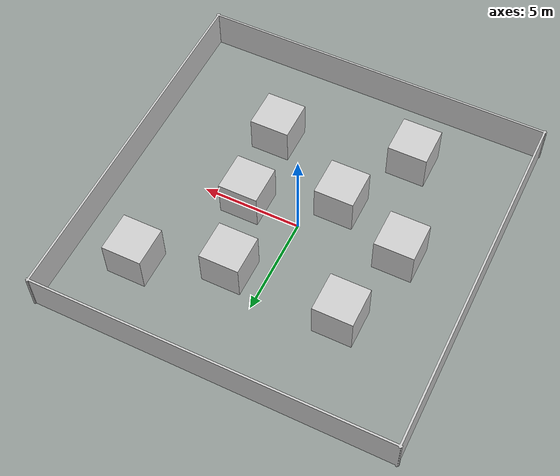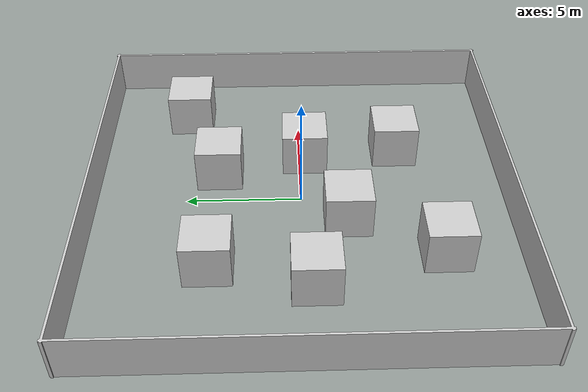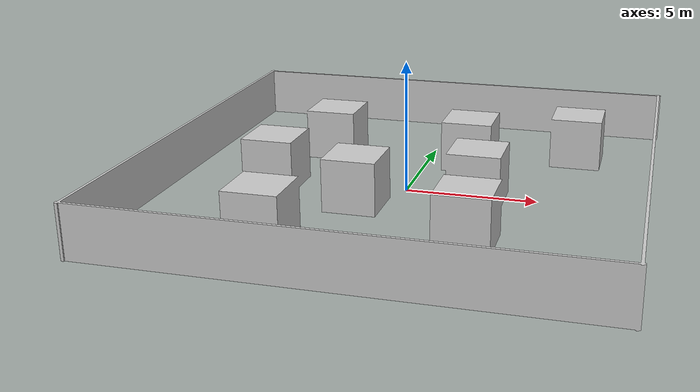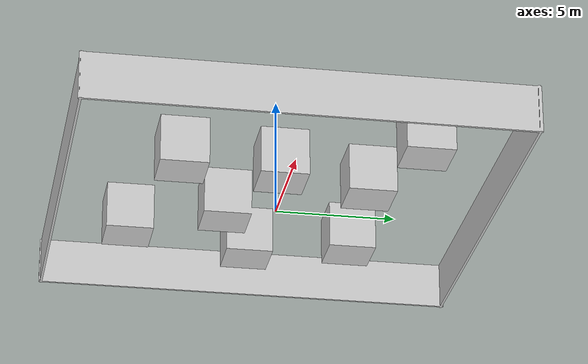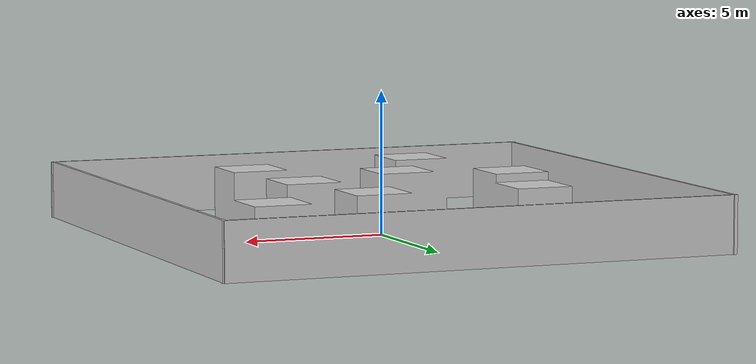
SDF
<?xml version="1.0" ?>
<sdf version="1.9">
  <model name="house">
    <static>true</static>
    <link name="link">

      <collision name="collision">
        <geometry>
          <mesh>
            <uri>model://obstacle2x2/house/meshes/mesh.dae</uri>
            <scale>1 1 1</scale>
          </mesh>
        </geometry>
      </collision>

      <visual name="visual">
        <geometry>
          <mesh>
            <uri>model://obstacle2x2/house/meshes/mesh.dae</uri>
          </mesh>
        </geometry>
      </visual>

    </link>
  </model>
</sdf>
